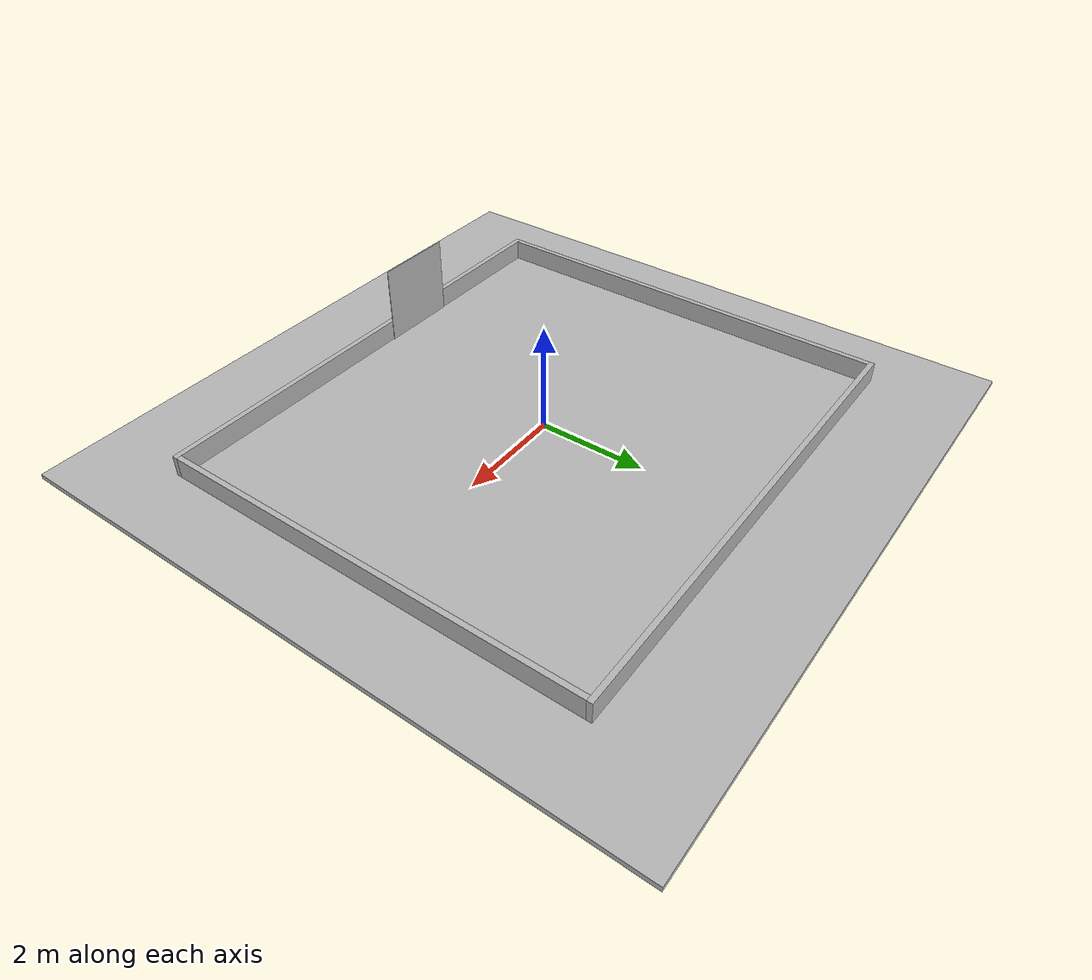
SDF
<?xml version="1.0"?>
<sdf version="1.6">
  <world name="lunabotics_ucf_arena">

    <!-- PHYSICS -->
    <physics type="ode">
      <gravity>0 0 -9.81</gravity>
    </physics>

    <!-- Ground truth for localisation testing: publishes /gazebo/model_states -->
    <plugin name="gazebo_ros_state" filename="libgazebo_ros_state.so">
      <ros>
        <namespace>/gazebo</namespace>
      </ros>
      <update_rate>10.0</update_rate>
    </plugin>

    <light type="directional" name="sun">
      <pose>0 0 10 0 0 0</pose>
      <direction>-0.5 0.1 -0.9</direction>
    </light>

    <model name="arena_ground">
      <static>true</static>
      <link name="link">
        <collision name="collision">
          <geometry><box><size>12 12 0.1</size></box></geometry>
        </collision>
        <visual name="visual">
          <geometry><box><size>12 12 0.1</size></box></geometry>
          <material>
            <script>
              <uri>model://regolith_model/materials/scripts/regolith.material</uri>
              <uri>model://regolith_model/materials/textures/</uri>
              <name>Regolith/Ground</name>
            </script>
          </material>
        </visual>
        <pose>0 0 -0.05 0 0 0</pose>
      </link>
    </model>

    <!-- Walls: inner faces exactly on the arena boundary
         (south y=-4.05, north y=+4.05, west x=-4.57, east x=+4.57) -->
    <model name="wall_south">
      <static>true</static>
      <link name="link">
        <collision name="collision">
          <geometry><box><size>9.34 0.1 0.4</size></box></geometry>
        </collision>
        <visual name="visual">
          <geometry><box><size>9.34 0.1 0.4</size></box></geometry>
          <material>
            <script>
              <uri>model://regolith_model/materials/scripts/regolith.material</uri>
              <uri>model://regolith_model/materials/textures/</uri>
              <name>Regolith/Wall</name>
            </script>
          </material>
        </visual>
        <pose>0 -4.10 0.2 0 0 0</pose>
      </link>
    </model>

    <model name="wall_north">
      <static>true</static>
      <link name="link">
        <collision name="collision">
          <geometry><box><size>9.34 0.1 0.4</size></box></geometry>
        </collision>
        <visual name="visual">
          <geometry><box><size>9.34 0.1 0.4</size></box></geometry>
          <material>
            <script>
              <uri>model://regolith_model/materials/scripts/regolith.material</uri>
              <uri>model://regolith_model/materials/textures/</uri>
              <name>Regolith/Wall</name>
            </script>
          </material>
        </visual>
        <pose>0 4.10 0.2 0 0 0</pose>
      </link>
    </model>

    <model name="wall_west">
      <static>true</static>
      <link name="link">
        <collision name="collision">
          <geometry><box><size>0.1 8.10 0.4</size></box></geometry>
        </collision>
        <visual name="visual">
          <geometry><box><size>0.1 8.10 0.4</size></box></geometry>
          <material>
            <script>
              <uri>model://regolith_model/materials/scripts/regolith.material</uri>
              <uri>model://regolith_model/materials/textures/</uri>
              <name>Regolith/Wall</name>
            </script>
          </material>
        </visual>
        <pose>-4.62 0 0.2 0 0 0</pose>
      </link>
    </model>

    <model name="wall_east">
      <static>true</static>
      <link name="link">
        <collision name="collision">
          <geometry><box><size>0.1 8.10 0.4</size></box></geometry>
        </collision>
        <visual name="visual">
          <geometry><box><size>0.1 8.10 0.4</size></box></geometry>
          <material>
            <script>
              <uri>model://regolith_model/materials/scripts/regolith.material</uri>
              <uri>model://regolith_model/materials/textures/</uri>
              <name>Regolith/Wall</name>
            </script>
          </material>
        </visual>
        <pose>4.62 0 0.2 0 0 0</pose>
      </link>
    </model>

    <model name="apriltag_0">
      <static>true</static>
      <pose>-1.25 -4.04 0.75 0 0 1.5708</pose>
      <link name="link">
        <collision name="collision">
          <geometry><box><size>0.01 1.5 1.5</size></box></geometry>
        </collision>
        <visual name="visual">
          <geometry><box><size>0.01 1.5 1.5</size></box></geometry>
          <material>
            <script>
              <uri>model://apriltag_model/materials/scripts/apriltag.material</uri>
              <uri>model://apriltag_model/materials/textures/</uri>
              <name>AprilTag/tag0</name>
            </script>
          </material>
        </visual>
      </link>
    </model>

  </world>
</sdf>
